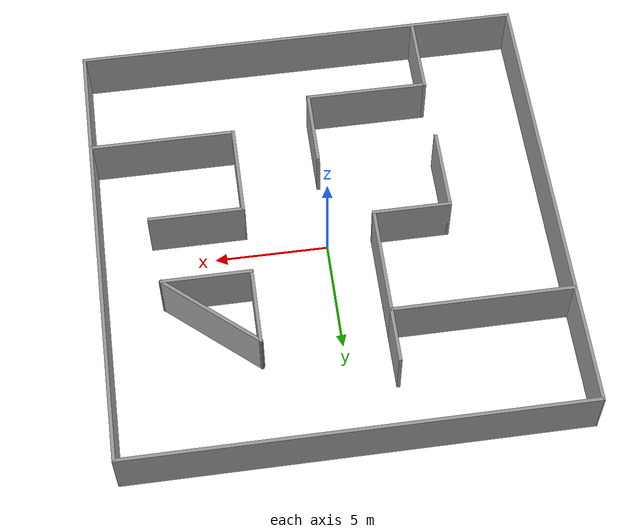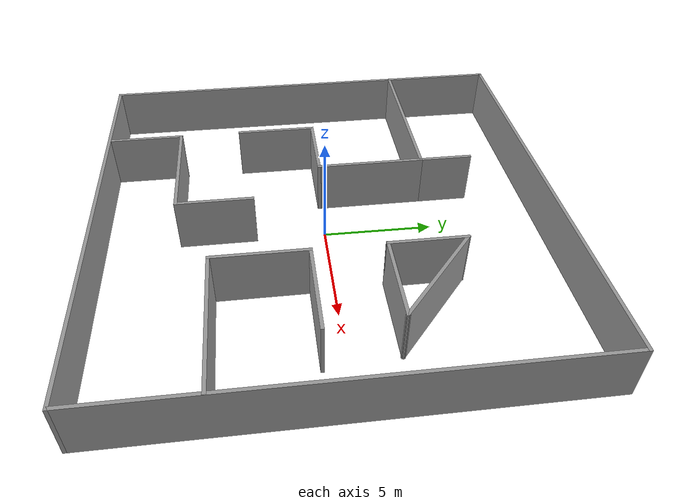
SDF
<?xml version='1.0'?>
<sdf version='1.6'>
  <model name='Test_Buliding_One'>
    <pose frame=''>0.019489 0.018347 0 0 -0 0</pose>
    <link name='Wall_0'>
      <collision name='Wall_0_Collision'>
        <geometry>
          <box>
            <size>20 0.15 2.5</size>
          </box>
        </geometry>
        <pose frame=''>0 0 1.25 0 -0 0</pose>
      </collision>
      <visual name='Wall_0_Visual'>
        <pose frame=''>0 0 1.25 0 -0 0</pose>
        <geometry>
          <box>
            <size>20 0.15 2.5</size>
          </box>
        </geometry>
        <material>
          <script>
            <uri>file://media/materials/scripts/gazebo.material</uri>
            <name>Gazebo/Grey</name>
          </script>
          <ambient>1 1 1 1</ambient>
        </material>
        <meta>
          <layer>0</layer>
        </meta>
      </visual>
      <pose frame=''>0 -10.05 0 0 -0 0</pose>
    </link>
    <link name='Wall_10'>
      <collision name='Wall_10_Collision'>
        <geometry>
          <box>
            <size>2.5 0.15 2.5</size>
          </box>
        </geometry>
        <pose frame=''>0 0 1.25 0 -0 0</pose>
      </collision>
      <visual name='Wall_10_Visual'>
        <pose frame=''>0 0 1.25 0 -0 0</pose>
        <geometry>
          <box>
            <size>2.5 0.15 2.5</size>
          </box>
        </geometry>
        <material>
          <script>
            <uri>file://media/materials/scripts/gazebo.material</uri>
            <name>Gazebo/Grey</name>
          </script>
          <ambient>1 1 1 1</ambient>
        </material>
        <meta>
          <layer>0</layer>
        </meta>
      </visual>
      <pose frame=''>-2.06302 5.97354 0 0 -0 1.5708</pose>
    </link>
    <link name='Wall_13'>
      <collision name='Wall_13_Collision'>
        <geometry>
          <box>
            <size>3.75 0.15 2.5</size>
          </box>
        </geometry>
        <pose frame=''>0 0 1.25 0 -0 0</pose>
      </collision>
      <visual name='Wall_13_Visual'>
        <pose frame=''>0 0 1.25 0 -0 0</pose>
        <geometry>
          <box>
            <size>3.75 0.15 2.5</size>
          </box>
        </geometry>
        <material>
          <script>
            <uri>file://media/materials/scripts/gazebo.material</uri>
            <name>Gazebo/Grey</name>
          </script>
          <ambient>1 1 1 1</ambient>
        </material>
        <meta>
          <layer>0</layer>
        </meta>
      </visual>
      <pose frame=''>-5.41302 -1.85146 0 0 0 -1.5708</pose>
    </link>
    <link name='Wall_15'>
      <collision name='Wall_15_Collision'>
        <geometry>
          <box>
            <size>3.5 0.15 2.5</size>
          </box>
        </geometry>
        <pose frame=''>0 0 1.25 0 -0 0</pose>
      </collision>
      <visual name='Wall_15_Visual'>
        <pose frame=''>0 0 1.25 0 -0 0</pose>
        <geometry>
          <box>
            <size>3.5 0.15 2.5</size>
          </box>
        </geometry>
        <material>
          <script>
            <uri>file://media/materials/scripts/gazebo.material</uri>
            <name>Gazebo/Grey</name>
          </script>
          <ambient>1 1 1 1</ambient>
        </material>
        <meta>
          <layer>0</layer>
        </meta>
      </visual>
      <pose frame=''>-5.38457 -8.24393 0 0 -0 1.5708</pose>
    </link>
    <link name='Wall_17'>
      <collision name='Wall_17_Collision'>
        <geometry>
          <box>
            <size>6.5 0.15 2.5</size>
          </box>
        </geometry>
        <pose frame=''>0 0 1.25 0 -0 0</pose>
      </collision>
      <visual name='Wall_17_Visual'>
        <pose frame=''>0 0 1.25 0 -0 0</pose>
        <geometry>
          <box>
            <size>6.5 0.15 2.5</size>
          </box>
        </geometry>
        <material>
          <script>
            <uri>file://media/materials/scripts/gazebo.material</uri>
            <name>Gazebo/Grey</name>
          </script>
          <ambient>1 1 1 1</ambient>
        </material>
        <meta>
          <layer>0</layer>
        </meta>
      </visual>
      <pose frame=''>6.72396 -5.10745 0 0 -0 3.14159</pose>
    </link>
    <link name='Wall_18'>
      <collision name='Wall_18_Collision'>
        <geometry>
          <box>
            <size>4.25 0.15 2.5</size>
          </box>
        </geometry>
        <pose frame=''>0 0 1.25 0 -0 0</pose>
      </collision>
      <visual name='Wall_18_Visual'>
        <pose frame=''>0 0 1.25 0 -0 0</pose>
        <geometry>
          <box>
            <size>4.25 0.15 2.5</size>
          </box>
        </geometry>
        <material>
          <script>
            <uri>file://media/materials/scripts/gazebo.material</uri>
            <name>Gazebo/Grey</name>
          </script>
          <ambient>1 1 1 1</ambient>
        </material>
        <meta>
          <layer>0</layer>
        </meta>
      </visual>
      <pose frame=''>3.54895 -3.05745 0 0 -0 1.5708</pose>
    </link>
    <link name='Wall_19'>
      <collision name='Wall_19_Collision'>
        <geometry>
          <box>
            <size>4.25 0.15 2.5</size>
          </box>
        </geometry>
        <pose frame=''>0 0 1.25 0 -0 0</pose>
      </collision>
      <visual name='Wall_19_Visual'>
        <pose frame=''>0 0 1.25 0 -0 0</pose>
        <geometry>
          <box>
            <size>4.25 0.15 2.5</size>
          </box>
        </geometry>
        <material>
          <script>
            <uri>file://media/materials/scripts/gazebo.material</uri>
            <name>Gazebo/Grey</name>
          </script>
          <ambient>1 1 1 1</ambient>
        </material>
        <meta>
          <layer>0</layer>
        </meta>
      </visual>
      <pose frame=''>5.59896 -1.00745 0 0 -0 0</pose>
    </link>
    <link name='Wall_2'>
      <collision name='Wall_2_Collision'>
        <geometry>
          <box>
            <size>20.25 0.15 2.5</size>
          </box>
        </geometry>
        <pose frame=''>0 0 1.25 0 -0 0</pose>
      </collision>
      <visual name='Wall_2_Visual'>
        <pose frame=''>0 0 1.25 0 -0 0</pose>
        <geometry>
          <box>
            <size>20.25 0.15 2.5</size>
          </box>
        </geometry>
        <material>
          <script>
            <uri>file://media/materials/scripts/gazebo.material</uri>
            <name>Gazebo/Grey</name>
          </script>
          <ambient>1 1 1 1</ambient>
        </material>
        <meta>
          <layer>0</layer>
        </meta>
      </visual>
      <pose frame=''>-9.925 0 0 0 -0 1.5708</pose>
    </link>
    <link name='Wall_21'>
      <collision name='Wall_21_Collision'>
        <geometry>
          <box>
            <size>5.5 0.15 2.5</size>
          </box>
        </geometry>
        <pose frame=''>0 0 1.25 0 -0 0</pose>
      </collision>
      <visual name='Wall_21_Visual'>
        <pose frame=''>0 0 1.25 0 -0 0</pose>
        <geometry>
          <box>
            <size>5.5 0.15 2.5</size>
          </box>
        </geometry>
        <material>
          <script>
            <uri>file://media/materials/scripts/gazebo.material</uri>
            <name>Gazebo/Grey</name>
          </script>
          <ambient>1 1 1 1</ambient>
        </material>
        <meta>
          <layer>0</layer>
        </meta>
      </visual>
      <pose frame=''>-2.70957 -6.56893 0 0 -0 0</pose>
    </link>
    <link name='Wall_22'>
      <collision name='Wall_22_Collision'>
        <geometry>
          <box>
            <size>3.5 0.15 2.5</size>
          </box>
        </geometry>
        <pose frame=''>0 0 1.25 0 -0 0</pose>
      </collision>
      <visual name='Wall_22_Visual'>
        <pose frame=''>0 0 1.25 0 -0 0</pose>
        <geometry>
          <box>
            <size>3.5 0.15 2.5</size>
          </box>
        </geometry>
        <material>
          <script>
            <uri>file://media/materials/scripts/gazebo.material</uri>
            <name>Gazebo/Grey</name>
          </script>
          <ambient>1 1 1 1</ambient>
        </material>
        <meta>
          <layer>0</layer>
        </meta>
      </visual>
      <pose frame=''>-0.03457 -4.89393 0 0 -0 1.5708</pose>
    </link>
    <link name='Wall_24'>
      <collision name='Wall_24_Collision'>
        <geometry>
          <box>
            <size>3.5 0.15 2.5</size>
          </box>
        </geometry>
        <pose frame=''>0 0 1.25 0 -0 0</pose>
      </collision>
      <visual name='Wall_24_Visual'>
        <pose frame=''>0 0 1.25 0 -0 0</pose>
        <geometry>
          <box>
            <size>3.5 0.15 2.5</size>
          </box>
        </geometry>
        <material>
          <script>
            <uri>file://media/materials/scripts/gazebo.material</uri>
            <name>Gazebo/Grey</name>
          </script>
          <ambient>1 1 1 1</ambient>
        </material>
        <meta>
          <layer>0</layer>
        </meta>
      </visual>
      <pose frame=''>3.53082 3.83111 0 0 0 -1.5708</pose>
    </link>
    <link name='Wall_25'>
      <collision name='Wall_25_Collision'>
        <geometry>
          <box>
            <size>4 0.15 2.5</size>
          </box>
        </geometry>
        <pose frame=''>0 0 1.25 0 -0 0</pose>
      </collision>
      <visual name='Wall_25_Visual'>
        <pose frame=''>0 0 1.25 0 -0 0</pose>
        <geometry>
          <box>
            <size>4 0.15 2.5</size>
          </box>
        </geometry>
        <material>
          <script>
            <uri>file://media/materials/scripts/gazebo.material</uri>
            <name>Gazebo/Grey</name>
          </script>
          <ambient>1 1 1 1</ambient>
        </material>
        <meta>
          <layer>0</layer>
        </meta>
      </visual>
      <pose frame=''>5.45582 2.15611 0 0 -0 0</pose>
    </link>
    <link name='Wall_26'>
      <collision name='Wall_26_Collision'>
        <geometry>
          <box>
            <size>5.25343 0.15 2.5</size>
          </box>
        </geometry>
        <pose frame=''>0 0 1.25 0 -0 0</pose>
      </collision>
      <visual name='Wall_26_Visual'>
        <pose frame=''>0 0 1.25 0 -0 0</pose>
        <geometry>
          <box>
            <size>5.25343 0.15 2.5</size>
          </box>
        </geometry>
        <material>
          <script>
            <uri>file://media/materials/scripts/gazebo.material</uri>
            <name>Gazebo/Grey</name>
          </script>
          <ambient>1 1 1 1</ambient>
        </material>
        <meta>
          <layer>0</layer>
        </meta>
      </visual>
      <pose frame=''>5.45582 3.83111 0 0 -0 2.42553</pose>
    </link>
    <link name='Wall_3'>
      <collision name='Wall_3_Collision'>
        <geometry>
          <box>
            <size>20 0.15 2.5</size>
          </box>
        </geometry>
        <pose frame=''>0 0 1.25 0 -0 0</pose>
      </collision>
      <visual name='Wall_3_Visual'>
        <pose frame=''>0 0 1.25 0 -0 0</pose>
        <geometry>
          <box>
            <size>20 0.15 2.5</size>
          </box>
        </geometry>
        <material>
          <script>
            <uri>file://media/materials/scripts/gazebo.material</uri>
            <name>Gazebo/Grey</name>
          </script>
          <ambient>1 1 1 1</ambient>
        </material>
        <meta>
          <layer>0</layer>
        </meta>
      </visual>
      <pose frame=''>0 10.05 0 0 -0 0</pose>
    </link>
    <link name='Wall_4'>
      <collision name='Wall_4_Collision'>
        <geometry>
          <box>
            <size>20.25 0.15 2.5</size>
          </box>
        </geometry>
        <pose frame=''>0 0 1.25 0 -0 0</pose>
      </collision>
      <visual name='Wall_4_Visual'>
        <pose frame=''>0 0 1.25 0 -0 0</pose>
        <geometry>
          <box>
            <size>20.25 0.15 2.5</size>
          </box>
        </geometry>
        <material>
          <script>
            <uri>file://media/materials/scripts/gazebo.material</uri>
            <name>Gazebo/Grey</name>
          </script>
          <ambient>1 1 1 1</ambient>
        </material>
        <meta>
          <layer>0</layer>
        </meta>
      </visual>
      <pose frame=''>9.925 0 0 0 0 -1.5708</pose>
    </link>
    <link name='Wall_6'>
      <collision name='Wall_6_Collision'>
        <geometry>
          <box>
            <size>8 0.15 2.5</size>
          </box>
        </geometry>
        <pose frame=''>0 0 1.25 0 -0 0</pose>
      </collision>
      <visual name='Wall_6_Visual'>
        <pose frame=''>0 0 1.25 0 -0 0</pose>
        <geometry>
          <box>
            <size>8 0.15 2.5</size>
          </box>
        </geometry>
        <material>
          <script>
            <uri>file://media/materials/scripts/gazebo.material</uri>
            <name>Gazebo/Grey</name>
          </script>
          <ambient>1 1 1 1</ambient>
        </material>
        <meta>
          <layer>0</layer>
        </meta>
      </visual>
      <pose frame=''>-5.98802 4.79854 0 0 -0 0</pose>
    </link>
    <link name='Wall_7'>
      <collision name='Wall_7_Collision'>
        <geometry>
          <box>
            <size>5 0.15 2.5</size>
          </box>
        </geometry>
        <pose frame=''>0 0 1.25 0 -0 0</pose>
      </collision>
      <visual name='Wall_7_Visual'>
        <pose frame=''>0 0 1.25 0 -0 0</pose>
        <geometry>
          <box>
            <size>5 0.15 2.5</size>
          </box>
        </geometry>
        <material>
          <script>
            <uri>file://media/materials/scripts/gazebo.material</uri>
            <name>Gazebo/Grey</name>
          </script>
          <ambient>1 1 1 1</ambient>
        </material>
        <meta>
          <layer>0</layer>
        </meta>
      </visual>
      <pose frame=''>-2.06302 2.37354 0 0 0 -1.5708</pose>
    </link>
    <link name='Wall_8'>
      <collision name='Wall_8_Collision'>
        <geometry>
          <box>
            <size>3.5 0.15 2.5</size>
          </box>
        </geometry>
        <pose frame=''>0 0 1.25 0 -0 0</pose>
      </collision>
      <visual name='Wall_8_Visual'>
        <pose frame=''>0 0 1.25 0 -0 0</pose>
        <geometry>
          <box>
            <size>3.5 0.15 2.5</size>
          </box>
        </geometry>
        <material>
          <script>
            <uri>file://media/materials/scripts/gazebo.material</uri>
            <name>Gazebo/Grey</name>
          </script>
          <ambient>1 1 1 1</ambient>
        </material>
        <meta>
          <layer>0</layer>
        </meta>
      </visual>
      <pose frame=''>-3.73802 -0.051463 0 0 -0 3.14159</pose>
    </link>
    <static>1</static>
  </model>
</sdf>
